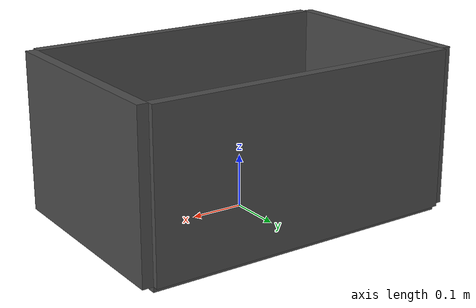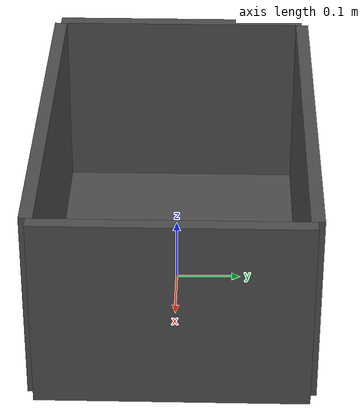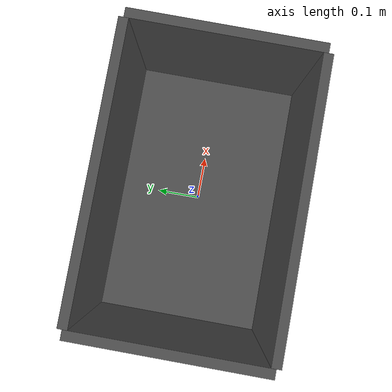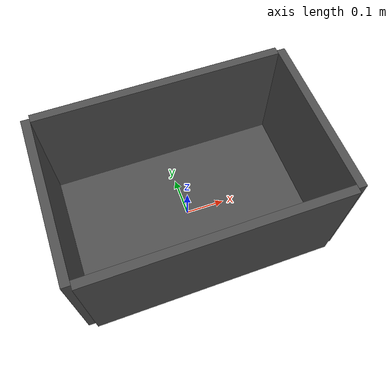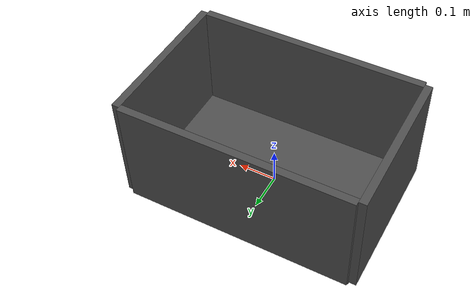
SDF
<?xml version="1.0" ?>
<sdf version="1.6">
  <model name="box_container">
    <pose>0 0 0 0 0 0</pose>
    <!-- Bottom side -->
    <link name="container_link">
      <visual name="visual">
        <geometry>
          <box>
            <size>0.6 0.4 0.02</size>
          </box>
        </geometry>
        <material>
          <diffuse>0.3 0.3 0.3 1.0</diffuse>
        </material>
      </visual>
      <collision name="collision">
        <geometry>
          <box>
            <size>0.6 0.4 0.02</size>
          </box>
        </geometry>
      </collision>
      <visual name="side1">
        <pose>0.31 0 0.15 0 0 0</pose>
        <geometry>
          <box>
            <size>0.02 0.4 0.3</size>
          </box>
        </geometry>
        <material>
          <diffuse>0.3 0.3 0.3 1.0</diffuse>
        </material>
      </visual>
      <collision name="collision1">
        <pose>0.31 0 0.15 0 0 0</pose>
        <geometry>
          <box>
            <size>0.02 0.4 0.3</size>
          </box>
        </geometry>
      </collision>
      <visual name="side2">
        <pose>-0.31 0 0.15 0 0 0</pose>
        <geometry>
          <box>
            <size>0.02 0.4 0.3</size>
          </box>
        </geometry>
        <material>
          <diffuse>0.3 0.3 0.3 1.0</diffuse>
        </material>
      </visual>
      <collision name="collision2">
        <pose>-0.31 0 0.15 0 0 0</pose>
        <geometry>
          <box>
            <size>0.02 0.4 0.3</size>
          </box>
        </geometry>
      </collision>
      <visual name="side3">
        <pose>0 0.2 0.15 0 0 0</pose>
        <geometry>
          <box>
            <size>0.6 0.02 0.3</size>
          </box>
        </geometry>
        <material>
          <diffuse>0.3 0.3 0.3 1.0</diffuse>
        </material>
      </visual>
      <collision name="collision3">
        <pose>0 0.2 0.15 0 0 0</pose>
        <geometry>
          <box>
            <size>0.6 0.02 0.3</size>
          </box>
        </geometry>
      </collision>
      <visual name="side4">
        <pose>0 -0.2 0.15 0 0 0</pose>
        <geometry>
          <box>
            <size>0.6 0.02 0.3</size>
          </box>
        </geometry>
        <material>
          <diffuse>0.3 0.3 0.3 1.0</diffuse>
        </material>
      </visual>
      <collision name="collision4">
        <pose>0 -0.2 0.15 0 0 0</pose>
        <geometry>
          <box>
            <size>0.6 0.02 0.3</size>
          </box>
        </geometry>
      </collision>
      <inertial>
        <mass>1.0</mass>
        <inertia>
          <ixx>0.0833</ixx>
          <iyy>0.0167</iyy>
          <izz>0.0833</izz>
        </inertia>
      </inertial>
    </link>
    <frame name="container_center">
      <pose relative_to="container_link">0 0 0.0 0 0 0</pose>
    </frame>
  </model>
</sdf>
